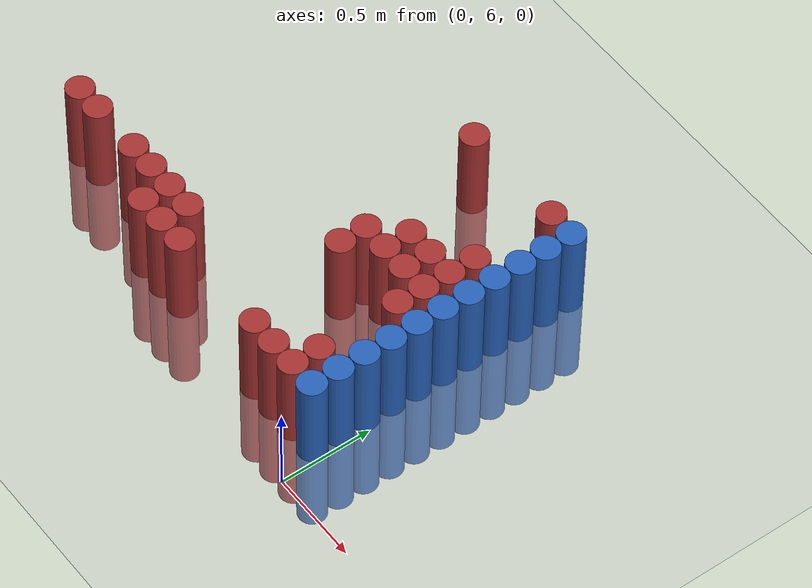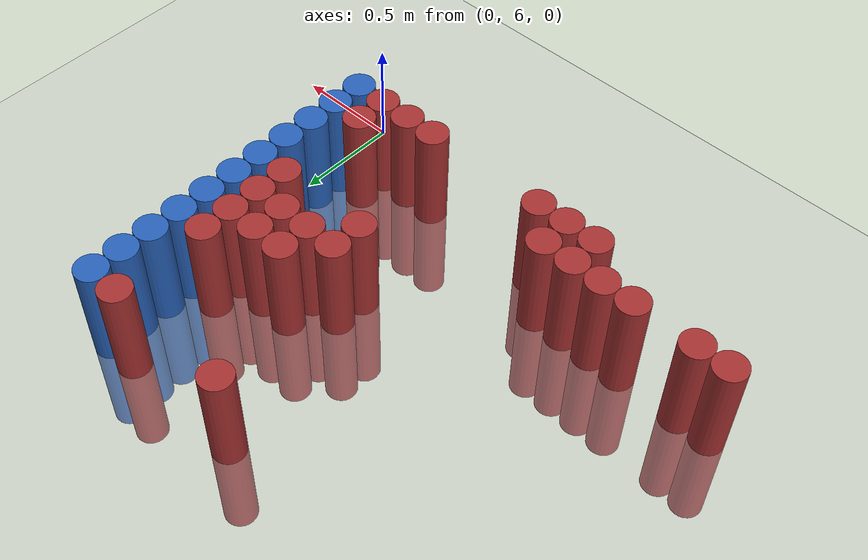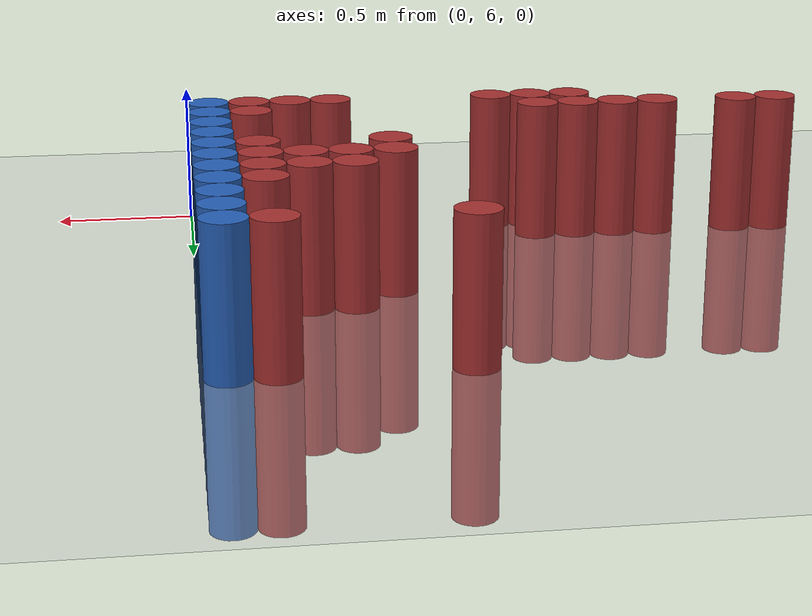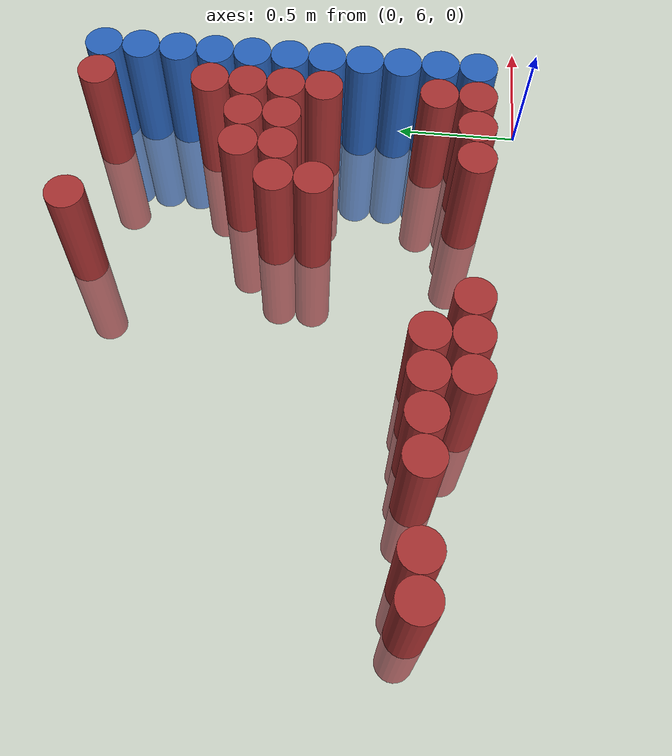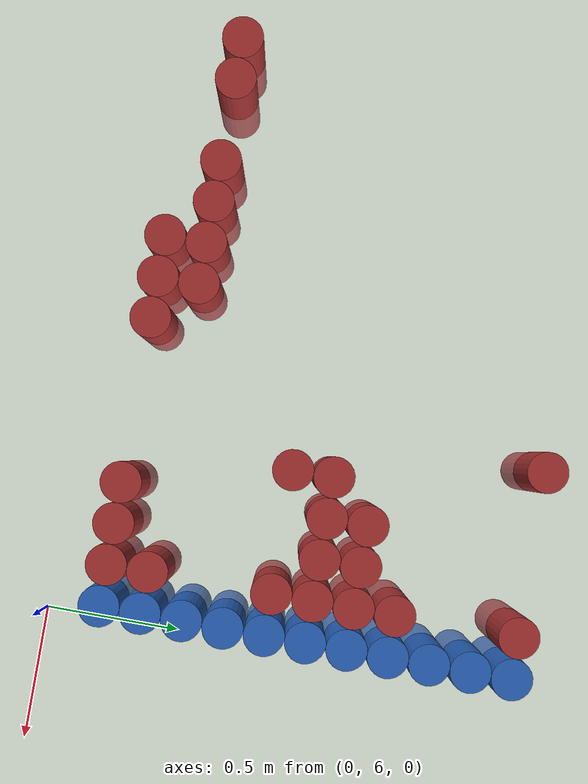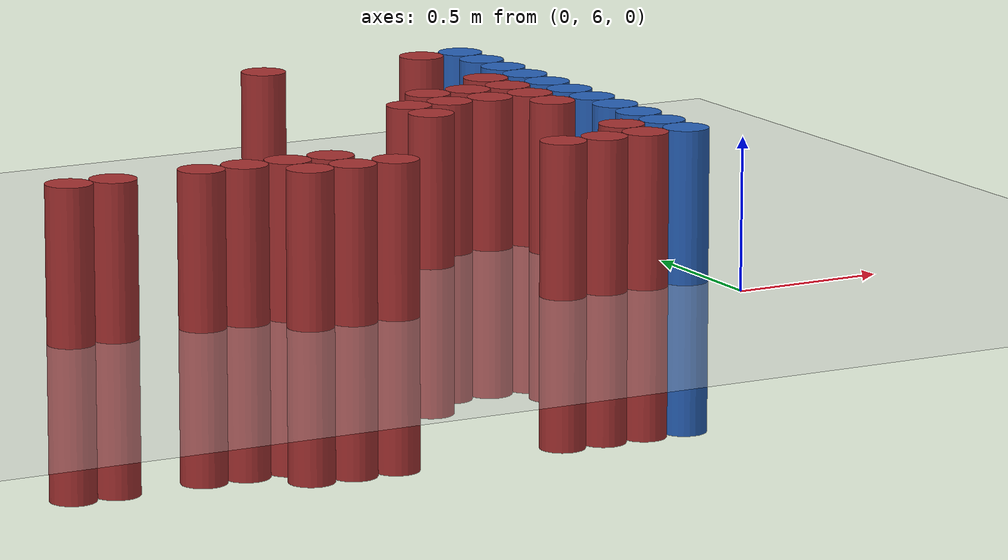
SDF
<sdf version="1.6">
 <world name="default">
  <model name="ground_plane">
   <static>1</static>
   <link name="link">
    <collision name="collision">
     <geometry><plane><normal>0 0 1</normal><size>100 100</size></plane></geometry>
     <surface><friction><ode><mu>100</mu><mu2>50</mu2></ode></friction></surface>
    </collision>
    <visual name="visual">
     <cast_shadows>0</cast_shadows>
     <geometry><plane><normal>0 0 1</normal><size>100 100</size></plane></geometry>
     <material>
      <script><uri>file://media/materials/scripts/gazebo.material</uri><name>Gazebo/Grey</name></script>
     </material>
    </visual>
   </link>
  </model>
  <model name="unit_cylinder_192">
   <static>1</static>
   <pose>-2.175000 6.375000 0.000000 0.000000 0.000000 0.000000</pose>
   <link name="link">
    <inertial>
     <mass>1</mass>
     <inertia><ixx>0.145833</ixx><ixy>0</ixy><ixz>0</ixz><iyy>0.145833</iyy><iyz>0</iyz><izz>0.125</izz></inertia>
    </inertial>
    <collision name="collision">
     <geometry><cylinder><radius>0.075000</radius><length>1</length></cylinder></geometry>
    </collision>
    <visual name="visual">
     <geometry><cylinder><radius>0.075000</radius><length>1</length></cylinder></geometry>
     <material>
      <ambient>0.648000 0.192000 0.192000 1</ambient>
      <diffuse>0.648000 0.192000 0.192000 1</diffuse>
     </material>
     <material>
      <script><name>Gazebo/Grey</name><uri>file://media/materials/scripts/gazebo.material</uri></script>
     </material>
    </visual>
    <sensor name="sensor_contact" type="contact"><contact><collision>collision</collision></contact></sensor>
   </link>
   <plugin filename="gz-sim-touchplugin-system" name="gz::sim::systems::TouchPlugin">
    <target>robot</target>
    <namespace>robot</namespace>
    <time>0.001</time>
    <enabled>true</enabled>
   </plugin>
  </model>
  <model name="unit_cylinder_197">
   <static>1</static>
   <pose>-2.025000 6.375000 0.000000 0.000000 0.000000 0.000000</pose>
   <link name="link">
    <inertial>
     <mass>1</mass>
     <inertia><ixx>0.145833</ixx><ixy>0</ixy><ixz>0</ixz><iyy>0.145833</iyy><iyz>0</iyz><izz>0.125</izz></inertia>
    </inertial>
    <collision name="collision">
     <geometry><cylinder><radius>0.075000</radius><length>1</length></cylinder></geometry>
    </collision>
    <visual name="visual">
     <geometry><cylinder><radius>0.075000</radius><length>1</length></cylinder></geometry>
     <material>
      <ambient>0.648000 0.192000 0.192000 1</ambient>
      <diffuse>0.648000 0.192000 0.192000 1</diffuse>
     </material>
     <material>
      <script><name>Gazebo/Grey</name><uri>file://media/materials/scripts/gazebo.material</uri></script>
     </material>
    </visual>
    <sensor name="sensor_contact" type="contact"><contact><collision>collision</collision></contact></sensor>
   </link>
   <plugin filename="gz-sim-touchplugin-system" name="gz::sim::systems::TouchPlugin">
    <target>robot</target>
    <namespace>robot</namespace>
    <time>0.001</time>
    <enabled>true</enabled>
   </plugin>
  </model>
  <model name="unit_cylinder_206">
   <static>1</static>
   <pose>-1.725000 6.375000 0.000000 0.000000 0.000000 0.000000</pose>
   <link name="link">
    <inertial>
     <mass>1</mass>
     <inertia><ixx>0.145833</ixx><ixy>0</ixy><ixz>0</ixz><iyy>0.145833</iyy><iyz>0</iyz><izz>0.125</izz></inertia>
    </inertial>
    <collision name="collision">
     <geometry><cylinder><radius>0.075000</radius><length>1</length></cylinder></geometry>
    </collision>
    <visual name="visual">
     <geometry><cylinder><radius>0.075000</radius><length>1</length></cylinder></geometry>
     <material>
      <ambient>0.648000 0.192000 0.192000 1</ambient>
      <diffuse>0.648000 0.192000 0.192000 1</diffuse>
     </material>
     <material>
      <script><name>Gazebo/Grey</name><uri>file://media/materials/scripts/gazebo.material</uri></script>
     </material>
    </visual>
    <sensor name="sensor_contact" type="contact"><contact><collision>collision</collision></contact></sensor>
   </link>
   <plugin filename="gz-sim-touchplugin-system" name="gz::sim::systems::TouchPlugin">
    <target>robot</target>
    <namespace>robot</namespace>
    <time>0.001</time>
    <enabled>true</enabled>
   </plugin>
  </model>
  <model name="unit_cylinder_208">
   <static>1</static>
   <pose>-1.575000 6.375000 0.000000 0.000000 0.000000 0.000000</pose>
   <link name="link">
    <inertial>
     <mass>1</mass>
     <inertia><ixx>0.145833</ixx><ixy>0</ixy><ixz>0</ixz><iyy>0.145833</iyy><iyz>0</iyz><izz>0.125</izz></inertia>
    </inertial>
    <collision name="collision">
     <geometry><cylinder><radius>0.075000</radius><length>1</length></cylinder></geometry>
    </collision>
    <visual name="visual">
     <geometry><cylinder><radius>0.075000</radius><length>1</length></cylinder></geometry>
     <material>
      <ambient>0.648000 0.192000 0.192000 1</ambient>
      <diffuse>0.648000 0.192000 0.192000 1</diffuse>
     </material>
     <material>
      <script><name>Gazebo/Grey</name><uri>file://media/materials/scripts/gazebo.material</uri></script>
     </material>
    </visual>
    <sensor name="sensor_contact" type="contact"><contact><collision>collision</collision></contact></sensor>
   </link>
   <plugin filename="gz-sim-touchplugin-system" name="gz::sim::systems::TouchPlugin">
    <target>robot</target>
    <namespace>robot</namespace>
    <time>0.001</time>
    <enabled>true</enabled>
   </plugin>
  </model>
  <model name="unit_cylinder_212">
   <static>1</static>
   <pose>-1.425000 6.225000 0.000000 0.000000 0.000000 0.000000</pose>
   <link name="link">
    <inertial>
     <mass>1</mass>
     <inertia><ixx>0.145833</ixx><ixy>0</ixy><ixz>0</ixz><iyy>0.145833</iyy><iyz>0</iyz><izz>0.125</izz></inertia>
    </inertial>
    <collision name="collision">
     <geometry><cylinder><radius>0.075000</radius><length>1</length></cylinder></geometry>
    </collision>
    <visual name="visual">
     <geometry><cylinder><radius>0.075000</radius><length>1</length></cylinder></geometry>
     <material>
      <ambient>0.648000 0.192000 0.192000 1</ambient>
      <diffuse>0.648000 0.192000 0.192000 1</diffuse>
     </material>
     <material>
      <script><name>Gazebo/Grey</name><uri>file://media/materials/scripts/gazebo.material</uri></script>
     </material>
    </visual>
    <sensor name="sensor_contact" type="contact"><contact><collision>collision</collision></contact></sensor>
   </link>
   <plugin filename="gz-sim-touchplugin-system" name="gz::sim::systems::TouchPlugin">
    <target>robot</target>
    <namespace>robot</namespace>
    <time>0.001</time>
    <enabled>true</enabled>
   </plugin>
  </model>
  <model name="unit_cylinder_213">
   <static>1</static>
   <pose>-1.425000 6.375000 0.000000 0.000000 0.000000 0.000000</pose>
   <link name="link">
    <inertial>
     <mass>1</mass>
     <inertia><ixx>0.145833</ixx><ixy>0</ixy><ixz>0</ixz><iyy>0.145833</iyy><iyz>0</iyz><izz>0.125</izz></inertia>
    </inertial>
    <collision name="collision">
     <geometry><cylinder><radius>0.075000</radius><length>1</length></cylinder></geometry>
    </collision>
    <visual name="visual">
     <geometry><cylinder><radius>0.075000</radius><length>1</length></cylinder></geometry>
     <material>
      <ambient>0.648000 0.192000 0.192000 1</ambient>
      <diffuse>0.648000 0.192000 0.192000 1</diffuse>
     </material>
     <material>
      <script><name>Gazebo/Grey</name><uri>file://media/materials/scripts/gazebo.material</uri></script>
     </material>
    </visual>
    <sensor name="sensor_contact" type="contact"><contact><collision>collision</collision></contact></sensor>
   </link>
   <plugin filename="gz-sim-touchplugin-system" name="gz::sim::systems::TouchPlugin">
    <target>robot</target>
    <namespace>robot</namespace>
    <time>0.001</time>
    <enabled>true</enabled>
   </plugin>
  </model>
  <model name="unit_cylinder_216">
   <static>1</static>
   <pose>-1.275000 6.225000 0.000000 0.000000 0.000000 0.000000</pose>
   <link name="link">
    <inertial>
     <mass>1</mass>
     <inertia><ixx>0.145833</ixx><ixy>0</ixy><ixz>0</ixz><iyy>0.145833</iyy><iyz>0</iyz><izz>0.125</izz></inertia>
    </inertial>
    <collision name="collision">
     <geometry><cylinder><radius>0.075000</radius><length>1</length></cylinder></geometry>
    </collision>
    <visual name="visual">
     <geometry><cylinder><radius>0.075000</radius><length>1</length></cylinder></geometry>
     <material>
      <ambient>0.648000 0.192000 0.192000 1</ambient>
      <diffuse>0.648000 0.192000 0.192000 1</diffuse>
     </material>
     <material>
      <script><name>Gazebo/Grey</name><uri>file://media/materials/scripts/gazebo.material</uri></script>
     </material>
    </visual>
    <sensor name="sensor_contact" type="contact"><contact><collision>collision</collision></contact></sensor>
   </link>
   <plugin filename="gz-sim-touchplugin-system" name="gz::sim::systems::TouchPlugin">
    <target>robot</target>
    <namespace>robot</namespace>
    <time>0.001</time>
    <enabled>true</enabled>
   </plugin>
  </model>
  <model name="unit_cylinder_217">
   <static>1</static>
   <pose>-1.275000 6.375000 0.000000 0.000000 0.000000 0.000000</pose>
   <link name="link">
    <inertial>
     <mass>1</mass>
     <inertia><ixx>0.145833</ixx><ixy>0</ixy><ixz>0</ixz><iyy>0.145833</iyy><iyz>0</iyz><izz>0.125</izz></inertia>
    </inertial>
    <collision name="collision">
     <geometry><cylinder><radius>0.075000</radius><length>1</length></cylinder></geometry>
    </collision>
    <visual name="visual">
     <geometry><cylinder><radius>0.075000</radius><length>1</length></cylinder></geometry>
     <material>
      <ambient>0.648000 0.192000 0.192000 1</ambient>
      <diffuse>0.648000 0.192000 0.192000 1</diffuse>
     </material>
     <material>
      <script><name>Gazebo/Grey</name><uri>file://media/materials/scripts/gazebo.material</uri></script>
     </material>
    </visual>
    <sensor name="sensor_contact" type="contact"><contact><collision>collision</collision></contact></sensor>
   </link>
   <plugin filename="gz-sim-touchplugin-system" name="gz::sim::systems::TouchPlugin">
    <target>robot</target>
    <namespace>robot</namespace>
    <time>0.001</time>
    <enabled>true</enabled>
   </plugin>
  </model>
  <model name="unit_cylinder_220">
   <static>1</static>
   <pose>-1.125000 6.225000 0.000000 0.000000 0.000000 0.000000</pose>
   <link name="link">
    <inertial>
     <mass>1</mass>
     <inertia><ixx>0.145833</ixx><ixy>0</ixy><ixz>0</ixz><iyy>0.145833</iyy><iyz>0</iyz><izz>0.125</izz></inertia>
    </inertial>
    <collision name="collision">
     <geometry><cylinder><radius>0.075000</radius><length>1</length></cylinder></geometry>
    </collision>
    <visual name="visual">
     <geometry><cylinder><radius>0.075000</radius><length>1</length></cylinder></geometry>
     <material>
      <ambient>0.648000 0.192000 0.192000 1</ambient>
      <diffuse>0.648000 0.192000 0.192000 1</diffuse>
     </material>
     <material>
      <script><name>Gazebo/Grey</name><uri>file://media/materials/scripts/gazebo.material</uri></script>
     </material>
    </visual>
    <sensor name="sensor_contact" type="contact"><contact><collision>collision</collision></contact></sensor>
   </link>
   <plugin filename="gz-sim-touchplugin-system" name="gz::sim::systems::TouchPlugin">
    <target>robot</target>
    <namespace>robot</namespace>
    <time>0.001</time>
    <enabled>true</enabled>
   </plugin>
  </model>
  <model name="unit_cylinder_225">
   <static>1</static>
   <pose>-0.825000 7.725000 0.000000 0.000000 0.000000 0.000000</pose>
   <link name="link">
    <inertial>
     <mass>1</mass>
     <inertia><ixx>0.145833</ixx><ixy>0</ixy><ixz>0</ixz><iyy>0.145833</iyy><iyz>0</iyz><izz>0.125</izz></inertia>
    </inertial>
    <collision name="collision">
     <geometry><cylinder><radius>0.075000</radius><length>1</length></cylinder></geometry>
    </collision>
    <visual name="visual">
     <geometry><cylinder><radius>0.075000</radius><length>1</length></cylinder></geometry>
     <material>
      <ambient>0.648000 0.192000 0.192000 1</ambient>
      <diffuse>0.648000 0.192000 0.192000 1</diffuse>
     </material>
     <material>
      <script><name>Gazebo/Grey</name><uri>file://media/materials/scripts/gazebo.material</uri></script>
     </material>
    </visual>
    <sensor name="sensor_contact" type="contact"><contact><collision>collision</collision></contact></sensor>
   </link>
   <plugin filename="gz-sim-touchplugin-system" name="gz::sim::systems::TouchPlugin">
    <target>robot</target>
    <namespace>robot</namespace>
    <time>0.001</time>
    <enabled>true</enabled>
   </plugin>
  </model>
  <model name="unit_cylinder_229">
   <static>1</static>
   <pose>-0.675000 6.825000 0.000000 0.000000 0.000000 0.000000</pose>
   <link name="link">
    <inertial>
     <mass>1</mass>
     <inertia><ixx>0.145833</ixx><ixy>0</ixy><ixz>0</ixz><iyy>0.145833</iyy><iyz>0</iyz><izz>0.125</izz></inertia>
    </inertial>
    <collision name="collision">
     <geometry><cylinder><radius>0.075000</radius><length>1</length></cylinder></geometry>
    </collision>
    <visual name="visual">
     <geometry><cylinder><radius>0.075000</radius><length>1</length></cylinder></geometry>
     <material>
      <ambient>0.648000 0.192000 0.192000 1</ambient>
      <diffuse>0.648000 0.192000 0.192000 1</diffuse>
     </material>
     <material>
      <script><name>Gazebo/Grey</name><uri>file://media/materials/scripts/gazebo.material</uri></script>
     </material>
    </visual>
    <sensor name="sensor_contact" type="contact"><contact><collision>collision</collision></contact></sensor>
   </link>
   <plugin filename="gz-sim-touchplugin-system" name="gz::sim::systems::TouchPlugin">
    <target>robot</target>
    <namespace>robot</namespace>
    <time>0.001</time>
    <enabled>true</enabled>
   </plugin>
  </model>
  <model name="unit_cylinder_230">
   <static>1</static>
   <pose>-0.675000 6.975000 0.000000 0.000000 0.000000 0.000000</pose>
   <link name="link">
    <inertial>
     <mass>1</mass>
     <inertia><ixx>0.145833</ixx><ixy>0</ixy><ixz>0</ixz><iyy>0.145833</iyy><iyz>0</iyz><izz>0.125</izz></inertia>
    </inertial>
    <collision name="collision">
     <geometry><cylinder><radius>0.075000</radius><length>1</length></cylinder></geometry>
    </collision>
    <visual name="visual">
     <geometry><cylinder><radius>0.075000</radius><length>1</length></cylinder></geometry>
     <material>
      <ambient>0.648000 0.192000 0.192000 1</ambient>
      <diffuse>0.648000 0.192000 0.192000 1</diffuse>
     </material>
     <material>
      <script><name>Gazebo/Grey</name><uri>file://media/materials/scripts/gazebo.material</uri></script>
     </material>
    </visual>
    <sensor name="sensor_contact" type="contact"><contact><collision>collision</collision></contact></sensor>
   </link>
   <plugin filename="gz-sim-touchplugin-system" name="gz::sim::systems::TouchPlugin">
    <target>robot</target>
    <namespace>robot</namespace>
    <time>0.001</time>
    <enabled>true</enabled>
   </plugin>
  </model>
  <model name="unit_cylinder_233">
   <static>1</static>
   <pose>-0.525000 6.225000 0.000000 0.000000 0.000000 0.000000</pose>
   <link name="link">
    <inertial>
     <mass>1</mass>
     <inertia><ixx>0.145833</ixx><ixy>0</ixy><ixz>0</ixz><iyy>0.145833</iyy><iyz>0</iyz><izz>0.125</izz></inertia>
    </inertial>
    <collision name="collision">
     <geometry><cylinder><radius>0.075000</radius><length>1</length></cylinder></geometry>
    </collision>
    <visual name="visual">
     <geometry><cylinder><radius>0.075000</radius><length>1</length></cylinder></geometry>
     <material>
      <ambient>0.648000 0.192000 0.192000 1</ambient>
      <diffuse>0.648000 0.192000 0.192000 1</diffuse>
     </material>
     <material>
      <script><name>Gazebo/Grey</name><uri>file://media/materials/scripts/gazebo.material</uri></script>
     </material>
    </visual>
    <sensor name="sensor_contact" type="contact"><contact><collision>collision</collision></contact></sensor>
   </link>
   <plugin filename="gz-sim-touchplugin-system" name="gz::sim::systems::TouchPlugin">
    <target>robot</target>
    <namespace>robot</namespace>
    <time>0.001</time>
    <enabled>true</enabled>
   </plugin>
  </model>
  <model name="unit_cylinder_234">
   <static>1</static>
   <pose>-0.525000 6.975000 0.000000 0.000000 0.000000 0.000000</pose>
   <link name="link">
    <inertial>
     <mass>1</mass>
     <inertia><ixx>0.145833</ixx><ixy>0</ixy><ixz>0</ixz><iyy>0.145833</iyy><iyz>0</iyz><izz>0.125</izz></inertia>
    </inertial>
    <collision name="collision">
     <geometry><cylinder><radius>0.075000</radius><length>1</length></cylinder></geometry>
    </collision>
    <visual name="visual">
     <geometry><cylinder><radius>0.075000</radius><length>1</length></cylinder></geometry>
     <material>
      <ambient>0.648000 0.192000 0.192000 1</ambient>
      <diffuse>0.648000 0.192000 0.192000 1</diffuse>
     </material>
     <material>
      <script><name>Gazebo/Grey</name><uri>file://media/materials/scripts/gazebo.material</uri></script>
     </material>
    </visual>
    <sensor name="sensor_contact" type="contact"><contact><collision>collision</collision></contact></sensor>
   </link>
   <plugin filename="gz-sim-touchplugin-system" name="gz::sim::systems::TouchPlugin">
    <target>robot</target>
    <namespace>robot</namespace>
    <time>0.001</time>
    <enabled>true</enabled>
   </plugin>
  </model>
  <model name="unit_cylinder_235">
   <static>1</static>
   <pose>-0.525000 7.125000 0.000000 0.000000 0.000000 0.000000</pose>
   <link name="link">
    <inertial>
     <mass>1</mass>
     <inertia><ixx>0.145833</ixx><ixy>0</ixy><ixz>0</ixz><iyy>0.145833</iyy><iyz>0</iyz><izz>0.125</izz></inertia>
    </inertial>
    <collision name="collision">
     <geometry><cylinder><radius>0.075000</radius><length>1</length></cylinder></geometry>
    </collision>
    <visual name="visual">
     <geometry><cylinder><radius>0.075000</radius><length>1</length></cylinder></geometry>
     <material>
      <ambient>0.648000 0.192000 0.192000 1</ambient>
      <diffuse>0.648000 0.192000 0.192000 1</diffuse>
     </material>
     <material>
      <script><name>Gazebo/Grey</name><uri>file://media/materials/scripts/gazebo.material</uri></script>
     </material>
    </visual>
    <sensor name="sensor_contact" type="contact"><contact><collision>collision</collision></contact></sensor>
   </link>
   <plugin filename="gz-sim-touchplugin-system" name="gz::sim::systems::TouchPlugin">
    <target>robot</target>
    <namespace>robot</namespace>
    <time>0.001</time>
    <enabled>true</enabled>
   </plugin>
  </model>
  <model name="unit_cylinder_239">
   <static>1</static>
   <pose>-0.375000 6.225000 0.000000 0.000000 0.000000 0.000000</pose>
   <link name="link">
    <inertial>
     <mass>1</mass>
     <inertia><ixx>0.145833</ixx><ixy>0</ixy><ixz>0</ixz><iyy>0.145833</iyy><iyz>0</iyz><izz>0.125</izz></inertia>
    </inertial>
    <collision name="collision">
     <geometry><cylinder><radius>0.075000</radius><length>1</length></cylinder></geometry>
    </collision>
    <visual name="visual">
     <geometry><cylinder><radius>0.075000</radius><length>1</length></cylinder></geometry>
     <material>
      <ambient>0.648000 0.192000 0.192000 1</ambient>
      <diffuse>0.648000 0.192000 0.192000 1</diffuse>
     </material>
     <material>
      <script><name>Gazebo/Grey</name><uri>file://media/materials/scripts/gazebo.material</uri></script>
     </material>
    </visual>
    <sensor name="sensor_contact" type="contact"><contact><collision>collision</collision></contact></sensor>
   </link>
   <plugin filename="gz-sim-touchplugin-system" name="gz::sim::systems::TouchPlugin">
    <target>robot</target>
    <namespace>robot</namespace>
    <time>0.001</time>
    <enabled>true</enabled>
   </plugin>
  </model>
  <model name="unit_cylinder_240">
   <static>1</static>
   <pose>-0.375000 6.975000 0.000000 0.000000 0.000000 0.000000</pose>
   <link name="link">
    <inertial>
     <mass>1</mass>
     <inertia><ixx>0.145833</ixx><ixy>0</ixy><ixz>0</ixz><iyy>0.145833</iyy><iyz>0</iyz><izz>0.125</izz></inertia>
    </inertial>
    <collision name="collision">
     <geometry><cylinder><radius>0.075000</radius><length>1</length></cylinder></geometry>
    </collision>
    <visual name="visual">
     <geometry><cylinder><radius>0.075000</radius><length>1</length></cylinder></geometry>
     <material>
      <ambient>0.648000 0.192000 0.192000 1</ambient>
      <diffuse>0.648000 0.192000 0.192000 1</diffuse>
     </material>
     <material>
      <script><name>Gazebo/Grey</name><uri>file://media/materials/scripts/gazebo.material</uri></script>
     </material>
    </visual>
    <sensor name="sensor_contact" type="contact"><contact><collision>collision</collision></contact></sensor>
   </link>
   <plugin filename="gz-sim-touchplugin-system" name="gz::sim::systems::TouchPlugin">
    <target>robot</target>
    <namespace>robot</namespace>
    <time>0.001</time>
    <enabled>true</enabled>
   </plugin>
  </model>
  <model name="unit_cylinder_241">
   <static>1</static>
   <pose>-0.375000 7.125000 0.000000 0.000000 0.000000 0.000000</pose>
   <link name="link">
    <inertial>
     <mass>1</mass>
     <inertia><ixx>0.145833</ixx><ixy>0</ixy><ixz>0</ixz><iyy>0.145833</iyy><iyz>0</iyz><izz>0.125</izz></inertia>
    </inertial>
    <collision name="collision">
     <geometry><cylinder><radius>0.075000</radius><length>1</length></cylinder></geometry>
    </collision>
    <visual name="visual">
     <geometry><cylinder><radius>0.075000</radius><length>1</length></cylinder></geometry>
     <material>
      <ambient>0.648000 0.192000 0.192000 1</ambient>
      <diffuse>0.648000 0.192000 0.192000 1</diffuse>
     </material>
     <material>
      <script><name>Gazebo/Grey</name><uri>file://media/materials/scripts/gazebo.material</uri></script>
     </material>
    </visual>
    <sensor name="sensor_contact" type="contact"><contact><collision>collision</collision></contact></sensor>
   </link>
   <plugin filename="gz-sim-touchplugin-system" name="gz::sim::systems::TouchPlugin">
    <target>robot</target>
    <namespace>robot</namespace>
    <time>0.001</time>
    <enabled>true</enabled>
   </plugin>
  </model>
  <model name="unit_cylinder_248">
   <static>1</static>
   <pose>-0.225000 6.225000 0.000000 0.000000 0.000000 0.000000</pose>
   <link name="link">
    <inertial>
     <mass>1</mass>
     <inertia><ixx>0.145833</ixx><ixy>0</ixy><ixz>0</ixz><iyy>0.145833</iyy><iyz>0</iyz><izz>0.125</izz></inertia>
    </inertial>
    <collision name="collision">
     <geometry><cylinder><radius>0.075000</radius><length>1</length></cylinder></geometry>
    </collision>
    <visual name="visual">
     <geometry><cylinder><radius>0.075000</radius><length>1</length></cylinder></geometry>
     <material>
      <ambient>0.648000 0.192000 0.192000 1</ambient>
      <diffuse>0.648000 0.192000 0.192000 1</diffuse>
     </material>
     <material>
      <script><name>Gazebo/Grey</name><uri>file://media/materials/scripts/gazebo.material</uri></script>
     </material>
    </visual>
    <sensor name="sensor_contact" type="contact"><contact><collision>collision</collision></contact></sensor>
   </link>
   <plugin filename="gz-sim-touchplugin-system" name="gz::sim::systems::TouchPlugin">
    <target>robot</target>
    <namespace>robot</namespace>
    <time>0.001</time>
    <enabled>true</enabled>
   </plugin>
  </model>
  <model name="unit_cylinder_249">
   <static>1</static>
   <pose>-0.225000 6.375000 0.000000 0.000000 0.000000 0.000000</pose>
   <link name="link">
    <inertial>
     <mass>1</mass>
     <inertia><ixx>0.145833</ixx><ixy>0</ixy><ixz>0</ixz><iyy>0.145833</iyy><iyz>0</iyz><izz>0.125</izz></inertia>
    </inertial>
    <collision name="collision">
     <geometry><cylinder><radius>0.075000</radius><length>1</length></cylinder></geometry>
    </collision>
    <visual name="visual">
     <geometry><cylinder><radius>0.075000</radius><length>1</length></cylinder></geometry>
     <material>
      <ambient>0.648000 0.192000 0.192000 1</ambient>
      <diffuse>0.648000 0.192000 0.192000 1</diffuse>
     </material>
     <material>
      <script><name>Gazebo/Grey</name><uri>file://media/materials/scripts/gazebo.material</uri></script>
     </material>
    </visual>
    <sensor name="sensor_contact" type="contact"><contact><collision>collision</collision></contact></sensor>
   </link>
   <plugin filename="gz-sim-touchplugin-system" name="gz::sim::systems::TouchPlugin">
    <target>robot</target>
    <namespace>robot</namespace>
    <time>0.001</time>
    <enabled>true</enabled>
   </plugin>
  </model>
  <model name="unit_cylinder_250">
   <static>1</static>
   <pose>-0.225000 6.825000 0.000000 0.000000 0.000000 0.000000</pose>
   <link name="link">
    <inertial>
     <mass>1</mass>
     <inertia><ixx>0.145833</ixx><ixy>0</ixy><ixz>0</ixz><iyy>0.145833</iyy><iyz>0</iyz><izz>0.125</izz></inertia>
    </inertial>
    <collision name="collision">
     <geometry><cylinder><radius>0.075000</radius><length>1</length></cylinder></geometry>
    </collision>
    <visual name="visual">
     <geometry><cylinder><radius>0.075000</radius><length>1</length></cylinder></geometry>
     <material>
      <ambient>0.648000 0.192000 0.192000 1</ambient>
      <diffuse>0.648000 0.192000 0.192000 1</diffuse>
     </material>
     <material>
      <script><name>Gazebo/Grey</name><uri>file://media/materials/scripts/gazebo.material</uri></script>
     </material>
    </visual>
    <sensor name="sensor_contact" type="contact"><contact><collision>collision</collision></contact></sensor>
   </link>
   <plugin filename="gz-sim-touchplugin-system" name="gz::sim::systems::TouchPlugin">
    <target>robot</target>
    <namespace>robot</namespace>
    <time>0.001</time>
    <enabled>true</enabled>
   </plugin>
  </model>
  <model name="unit_cylinder_251">
   <static>1</static>
   <pose>-0.225000 6.975000 0.000000 0.000000 0.000000 0.000000</pose>
   <link name="link">
    <inertial>
     <mass>1</mass>
     <inertia><ixx>0.145833</ixx><ixy>0</ixy><ixz>0</ixz><iyy>0.145833</iyy><iyz>0</iyz><izz>0.125</izz></inertia>
    </inertial>
    <collision name="collision">
     <geometry><cylinder><radius>0.075000</radius><length>1</length></cylinder></geometry>
    </collision>
    <visual name="visual">
     <geometry><cylinder><radius>0.075000</radius><length>1</length></cylinder></geometry>
     <material>
      <ambient>0.648000 0.192000 0.192000 1</ambient>
      <diffuse>0.648000 0.192000 0.192000 1</diffuse>
     </material>
     <material>
      <script><name>Gazebo/Grey</name><uri>file://media/materials/scripts/gazebo.material</uri></script>
     </material>
    </visual>
    <sensor name="sensor_contact" type="contact"><contact><collision>collision</collision></contact></sensor>
   </link>
   <plugin filename="gz-sim-touchplugin-system" name="gz::sim::systems::TouchPlugin">
    <target>robot</target>
    <namespace>robot</namespace>
    <time>0.001</time>
    <enabled>true</enabled>
   </plugin>
  </model>
  <model name="unit_cylinder_252">
   <static>1</static>
   <pose>-0.225000 7.125000 0.000000 0.000000 0.000000 0.000000</pose>
   <link name="link">
    <inertial>
     <mass>1</mass>
     <inertia><ixx>0.145833</ixx><ixy>0</ixy><ixz>0</ixz><iyy>0.145833</iyy><iyz>0</iyz><izz>0.125</izz></inertia>
    </inertial>
    <collision name="collision">
     <geometry><cylinder><radius>0.075000</radius><length>1</length></cylinder></geometry>
    </collision>
    <visual name="visual">
     <geometry><cylinder><radius>0.075000</radius><length>1</length></cylinder></geometry>
     <material>
      <ambient>0.648000 0.192000 0.192000 1</ambient>
      <diffuse>0.648000 0.192000 0.192000 1</diffuse>
     </material>
     <material>
      <script><name>Gazebo/Grey</name><uri>file://media/materials/scripts/gazebo.material</uri></script>
     </material>
    </visual>
    <sensor name="sensor_contact" type="contact"><contact><collision>collision</collision></contact></sensor>
   </link>
   <plugin filename="gz-sim-touchplugin-system" name="gz::sim::systems::TouchPlugin">
    <target>robot</target>
    <namespace>robot</namespace>
    <time>0.001</time>
    <enabled>true</enabled>
   </plugin>
  </model>
  <model name="unit_cylinder_253">
   <static>1</static>
   <pose>-0.225000 7.275000 0.000000 0.000000 0.000000 0.000000</pose>
   <link name="link">
    <inertial>
     <mass>1</mass>
     <inertia><ixx>0.145833</ixx><ixy>0</ixy><ixz>0</ixz><iyy>0.145833</iyy><iyz>0</iyz><izz>0.125</izz></inertia>
    </inertial>
    <collision name="collision">
     <geometry><cylinder><radius>0.075000</radius><length>1</length></cylinder></geometry>
    </collision>
    <visual name="visual">
     <geometry><cylinder><radius>0.075000</radius><length>1</length></cylinder></geometry>
     <material>
      <ambient>0.648000 0.192000 0.192000 1</ambient>
      <diffuse>0.648000 0.192000 0.192000 1</diffuse>
     </material>
     <material>
      <script><name>Gazebo/Grey</name><uri>file://media/materials/scripts/gazebo.material</uri></script>
     </material>
    </visual>
    <sensor name="sensor_contact" type="contact"><contact><collision>collision</collision></contact></sensor>
   </link>
   <plugin filename="gz-sim-touchplugin-system" name="gz::sim::systems::TouchPlugin">
    <target>robot</target>
    <namespace>robot</namespace>
    <time>0.001</time>
    <enabled>true</enabled>
   </plugin>
  </model>
  <model name="unit_cylinder_254">
   <static>1</static>
   <pose>-0.225000 7.725000 0.000000 0.000000 0.000000 0.000000</pose>
   <link name="link">
    <inertial>
     <mass>1</mass>
     <inertia><ixx>0.145833</ixx><ixy>0</ixy><ixz>0</ixz><iyy>0.145833</iyy><iyz>0</iyz><izz>0.125</izz></inertia>
    </inertial>
    <collision name="collision">
     <geometry><cylinder><radius>0.075000</radius><length>1</length></cylinder></geometry>
    </collision>
    <visual name="visual">
     <geometry><cylinder><radius>0.075000</radius><length>1</length></cylinder></geometry>
     <material>
      <ambient>0.648000 0.192000 0.192000 1</ambient>
      <diffuse>0.648000 0.192000 0.192000 1</diffuse>
     </material>
     <material>
      <script><name>Gazebo/Grey</name><uri>file://media/materials/scripts/gazebo.material</uri></script>
     </material>
    </visual>
    <sensor name="sensor_contact" type="contact"><contact><collision>collision</collision></contact></sensor>
   </link>
   <plugin filename="gz-sim-touchplugin-system" name="gz::sim::systems::TouchPlugin">
    <target>robot</target>
    <namespace>robot</namespace>
    <time>0.001</time>
    <enabled>true</enabled>
   </plugin>
  </model>
  <model name="unit_cylinder_269">
   <static>1</static>
   <pose>-0.075000 6.225000 0.000000 0.000000 0.000000 0.000000</pose>
   <link name="link">
    <inertial>
     <mass>1</mass>
     <inertia><ixx>0.145833</ixx><ixy>0</ixy><ixz>0</ixz><iyy>0.145833</iyy><iyz>0</iyz><izz>0.125</izz></inertia>
    </inertial>
    <collision name="collision">
     <geometry><cylinder><radius>0.075000</radius><length>1</length></cylinder></geometry>
    </collision>
    <visual name="visual">
     <geometry><cylinder><radius>0.075000</radius><length>1</length></cylinder></geometry>
     <material>
      <ambient>0.152000 0.379000 0.720000 1</ambient>
      <diffuse>0.152000 0.379000 0.720000 1</diffuse>
     </material>
     <material>
      <script><name>Gazebo/Grey</name><uri>file://media/materials/scripts/gazebo.material</uri></script>
     </material>
    </visual>
    <sensor name="sensor_contact" type="contact"><contact><collision>collision</collision></contact></sensor>
   </link>
   <plugin filename="gz-sim-touchplugin-system" name="gz::sim::systems::TouchPlugin">
    <target>robot</target>
    <namespace>robot</namespace>
    <time>0.001</time>
    <enabled>true</enabled>
   </plugin>
  </model>
  <model name="unit_cylinder_270">
   <static>1</static>
   <pose>-0.075000 6.375000 0.000000 0.000000 0.000000 0.000000</pose>
   <link name="link">
    <inertial>
     <mass>1</mass>
     <inertia><ixx>0.145833</ixx><ixy>0</ixy><ixz>0</ixz><iyy>0.145833</iyy><iyz>0</iyz><izz>0.125</izz></inertia>
    </inertial>
    <collision name="collision">
     <geometry><cylinder><radius>0.075000</radius><length>1</length></cylinder></geometry>
    </collision>
    <visual name="visual">
     <geometry><cylinder><radius>0.075000</radius><length>1</length></cylinder></geometry>
     <material>
      <ambient>0.152000 0.379000 0.720000 1</ambient>
      <diffuse>0.152000 0.379000 0.720000 1</diffuse>
     </material>
     <material>
      <script><name>Gazebo/Grey</name><uri>file://media/materials/scripts/gazebo.material</uri></script>
     </material>
    </visual>
    <sensor name="sensor_contact" type="contact"><contact><collision>collision</collision></contact></sensor>
   </link>
   <plugin filename="gz-sim-touchplugin-system" name="gz::sim::systems::TouchPlugin">
    <target>robot</target>
    <namespace>robot</namespace>
    <time>0.001</time>
    <enabled>true</enabled>
   </plugin>
  </model>
  <model name="unit_cylinder_271">
   <static>1</static>
   <pose>-0.075000 6.525000 0.000000 0.000000 0.000000 0.000000</pose>
   <link name="link">
    <inertial>
     <mass>1</mass>
     <inertia><ixx>0.145833</ixx><ixy>0</ixy><ixz>0</ixz><iyy>0.145833</iyy><iyz>0</iyz><izz>0.125</izz></inertia>
    </inertial>
    <collision name="collision">
     <geometry><cylinder><radius>0.075000</radius><length>1</length></cylinder></geometry>
    </collision>
    <visual name="visual">
     <geometry><cylinder><radius>0.075000</radius><length>1</length></cylinder></geometry>
     <material>
      <ambient>0.152000 0.379000 0.720000 1</ambient>
      <diffuse>0.152000 0.379000 0.720000 1</diffuse>
     </material>
     <material>
      <script><name>Gazebo/Grey</name><uri>file://media/materials/scripts/gazebo.material</uri></script>
     </material>
    </visual>
    <sensor name="sensor_contact" type="contact"><contact><collision>collision</collision></contact></sensor>
   </link>
   <plugin filename="gz-sim-touchplugin-system" name="gz::sim::systems::TouchPlugin">
    <target>robot</target>
    <namespace>robot</namespace>
    <time>0.001</time>
    <enabled>true</enabled>
   </plugin>
  </model>
  <model name="unit_cylinder_272">
   <static>1</static>
   <pose>-0.075000 6.675000 0.000000 0.000000 0.000000 0.000000</pose>
   <link name="link">
    <inertial>
     <mass>1</mass>
     <inertia><ixx>0.145833</ixx><ixy>0</ixy><ixz>0</ixz><iyy>0.145833</iyy><iyz>0</iyz><izz>0.125</izz></inertia>
    </inertial>
    <collision name="collision">
     <geometry><cylinder><radius>0.075000</radius><length>1</length></cylinder></geometry>
    </collision>
    <visual name="visual">
     <geometry><cylinder><radius>0.075000</radius><length>1</length></cylinder></geometry>
     <material>
      <ambient>0.152000 0.379000 0.720000 1</ambient>
      <diffuse>0.152000 0.379000 0.720000 1</diffuse>
     </material>
     <material>
      <script><name>Gazebo/Grey</name><uri>file://media/materials/scripts/gazebo.material</uri></script>
     </material>
    </visual>
    <sensor name="sensor_contact" type="contact"><contact><collision>collision</collision></contact></sensor>
   </link>
   <plugin filename="gz-sim-touchplugin-system" name="gz::sim::systems::TouchPlugin">
    <target>robot</target>
    <namespace>robot</namespace>
    <time>0.001</time>
    <enabled>true</enabled>
   </plugin>
  </model>
  <model name="unit_cylinder_273">
   <static>1</static>
   <pose>-0.075000 6.825000 0.000000 0.000000 0.000000 0.000000</pose>
   <link name="link">
    <inertial>
     <mass>1</mass>
     <inertia><ixx>0.145833</ixx><ixy>0</ixy><ixz>0</ixz><iyy>0.145833</iyy><iyz>0</iyz><izz>0.125</izz></inertia>
    </inertial>
    <collision name="collision">
     <geometry><cylinder><radius>0.075000</radius><length>1</length></cylinder></geometry>
    </collision>
    <visual name="visual">
     <geometry><cylinder><radius>0.075000</radius><length>1</length></cylinder></geometry>
     <material>
      <ambient>0.152000 0.379000 0.720000 1</ambient>
      <diffuse>0.152000 0.379000 0.720000 1</diffuse>
     </material>
     <material>
      <script><name>Gazebo/Grey</name><uri>file://media/materials/scripts/gazebo.material</uri></script>
     </material>
    </visual>
    <sensor name="sensor_contact" type="contact"><contact><collision>collision</collision></contact></sensor>
   </link>
   <plugin filename="gz-sim-touchplugin-system" name="gz::sim::systems::TouchPlugin">
    <target>robot</target>
    <namespace>robot</namespace>
    <time>0.001</time>
    <enabled>true</enabled>
   </plugin>
  </model>
  <model name="unit_cylinder_274">
   <static>1</static>
   <pose>-0.075000 6.975000 0.000000 0.000000 0.000000 0.000000</pose>
   <link name="link">
    <inertial>
     <mass>1</mass>
     <inertia><ixx>0.145833</ixx><ixy>0</ixy><ixz>0</ixz><iyy>0.145833</iyy><iyz>0</iyz><izz>0.125</izz></inertia>
    </inertial>
    <collision name="collision">
     <geometry><cylinder><radius>0.075000</radius><length>1</length></cylinder></geometry>
    </collision>
    <visual name="visual">
     <geometry><cylinder><radius>0.075000</radius><length>1</length></cylinder></geometry>
     <material>
      <ambient>0.152000 0.379000 0.720000 1</ambient>
      <diffuse>0.152000 0.379000 0.720000 1</diffuse>
     </material>
     <material>
      <script><name>Gazebo/Grey</name><uri>file://media/materials/scripts/gazebo.material</uri></script>
     </material>
    </visual>
    <sensor name="sensor_contact" type="contact"><contact><collision>collision</collision></contact></sensor>
   </link>
   <plugin filename="gz-sim-touchplugin-system" name="gz::sim::systems::TouchPlugin">
    <target>robot</target>
    <namespace>robot</namespace>
    <time>0.001</time>
    <enabled>true</enabled>
   </plugin>
  </model>
  <model name="unit_cylinder_275">
   <static>1</static>
   <pose>-0.075000 7.125000 0.000000 0.000000 0.000000 0.000000</pose>
   <link name="link">
    <inertial>
     <mass>1</mass>
     <inertia><ixx>0.145833</ixx><ixy>0</ixy><ixz>0</ixz><iyy>0.145833</iyy><iyz>0</iyz><izz>0.125</izz></inertia>
    </inertial>
    <collision name="collision">
     <geometry><cylinder><radius>0.075000</radius><length>1</length></cylinder></geometry>
    </collision>
    <visual name="visual">
     <geometry><cylinder><radius>0.075000</radius><length>1</length></cylinder></geometry>
     <material>
      <ambient>0.152000 0.379000 0.720000 1</ambient>
      <diffuse>0.152000 0.379000 0.720000 1</diffuse>
     </material>
     <material>
      <script><name>Gazebo/Grey</name><uri>file://media/materials/scripts/gazebo.material</uri></script>
     </material>
    </visual>
    <sensor name="sensor_contact" type="contact"><contact><collision>collision</collision></contact></sensor>
   </link>
   <plugin filename="gz-sim-touchplugin-system" name="gz::sim::systems::TouchPlugin">
    <target>robot</target>
    <namespace>robot</namespace>
    <time>0.001</time>
    <enabled>true</enabled>
   </plugin>
  </model>
  <model name="unit_cylinder_276">
   <static>1</static>
   <pose>-0.075000 7.275000 0.000000 0.000000 0.000000 0.000000</pose>
   <link name="link">
    <inertial>
     <mass>1</mass>
     <inertia><ixx>0.145833</ixx><ixy>0</ixy><ixz>0</ixz><iyy>0.145833</iyy><iyz>0</iyz><izz>0.125</izz></inertia>
    </inertial>
    <collision name="collision">
     <geometry><cylinder><radius>0.075000</radius><length>1</length></cylinder></geometry>
    </collision>
    <visual name="visual">
     <geometry><cylinder><radius>0.075000</radius><length>1</length></cylinder></geometry>
     <material>
      <ambient>0.152000 0.379000 0.720000 1</ambient>
      <diffuse>0.152000 0.379000 0.720000 1</diffuse>
     </material>
     <material>
      <script><name>Gazebo/Grey</name><uri>file://media/materials/scripts/gazebo.material</uri></script>
     </material>
    </visual>
    <sensor name="sensor_contact" type="contact"><contact><collision>collision</collision></contact></sensor>
   </link>
   <plugin filename="gz-sim-touchplugin-system" name="gz::sim::systems::TouchPlugin">
    <target>robot</target>
    <namespace>robot</namespace>
    <time>0.001</time>
    <enabled>true</enabled>
   </plugin>
  </model>
  <model name="unit_cylinder_277">
   <static>1</static>
   <pose>-0.075000 7.425000 0.000000 0.000000 0.000000 0.000000</pose>
   <link name="link">
    <inertial>
     <mass>1</mass>
     <inertia><ixx>0.145833</ixx><ixy>0</ixy><ixz>0</ixz><iyy>0.145833</iyy><iyz>0</iyz><izz>0.125</izz></inertia>
    </inertial>
    <collision name="collision">
     <geometry><cylinder><radius>0.075000</radius><length>1</length></cylinder></geometry>
    </collision>
    <visual name="visual">
     <geometry><cylinder><radius>0.075000</radius><length>1</length></cylinder></geometry>
     <material>
      <ambient>0.152000 0.379000 0.720000 1</ambient>
      <diffuse>0.152000 0.379000 0.720000 1</diffuse>
     </material>
     <material>
      <script><name>Gazebo/Grey</name><uri>file://media/materials/scripts/gazebo.material</uri></script>
     </material>
    </visual>
    <sensor name="sensor_contact" type="contact"><contact><collision>collision</collision></contact></sensor>
   </link>
   <plugin filename="gz-sim-touchplugin-system" name="gz::sim::systems::TouchPlugin">
    <target>robot</target>
    <namespace>robot</namespace>
    <time>0.001</time>
    <enabled>true</enabled>
   </plugin>
  </model>
  <model name="unit_cylinder_278">
   <static>1</static>
   <pose>-0.075000 7.575000 0.000000 0.000000 0.000000 0.000000</pose>
   <link name="link">
    <inertial>
     <mass>1</mass>
     <inertia><ixx>0.145833</ixx><ixy>0</ixy><ixz>0</ixz><iyy>0.145833</iyy><iyz>0</iyz><izz>0.125</izz></inertia>
    </inertial>
    <collision name="collision">
     <geometry><cylinder><radius>0.075000</radius><length>1</length></cylinder></geometry>
    </collision>
    <visual name="visual">
     <geometry><cylinder><radius>0.075000</radius><length>1</length></cylinder></geometry>
     <material>
      <ambient>0.152000 0.379000 0.720000 1</ambient>
      <diffuse>0.152000 0.379000 0.720000 1</diffuse>
     </material>
     <material>
      <script><name>Gazebo/Grey</name><uri>file://media/materials/scripts/gazebo.material</uri></script>
     </material>
    </visual>
    <sensor name="sensor_contact" type="contact"><contact><collision>collision</collision></contact></sensor>
   </link>
   <plugin filename="gz-sim-touchplugin-system" name="gz::sim::systems::TouchPlugin">
    <target>robot</target>
    <namespace>robot</namespace>
    <time>0.001</time>
    <enabled>true</enabled>
   </plugin>
  </model>
  <model name="unit_cylinder_279">
   <static>1</static>
   <pose>-0.075000 7.725000 0.000000 0.000000 0.000000 0.000000</pose>
   <link name="link">
    <inertial>
     <mass>1</mass>
     <inertia><ixx>0.145833</ixx><ixy>0</ixy><ixz>0</ixz><iyy>0.145833</iyy><iyz>0</iyz><izz>0.125</izz></inertia>
    </inertial>
    <collision name="collision">
     <geometry><cylinder><radius>0.075000</radius><length>1</length></cylinder></geometry>
    </collision>
    <visual name="visual">
     <geometry><cylinder><radius>0.075000</radius><length>1</length></cylinder></geometry>
     <material>
      <ambient>0.152000 0.379000 0.720000 1</ambient>
      <diffuse>0.152000 0.379000 0.720000 1</diffuse>
     </material>
     <material>
      <script><name>Gazebo/Grey</name><uri>file://media/materials/scripts/gazebo.material</uri></script>
     </material>
    </visual>
    <sensor name="sensor_contact" type="contact"><contact><collision>collision</collision></contact></sensor>
   </link>
   <plugin filename="gz-sim-touchplugin-system" name="gz::sim::systems::TouchPlugin">
    <target>robot</target>
    <namespace>robot</namespace>
    <time>0.001</time>
    <enabled>true</enabled>
   </plugin>
  </model>
 </world>
</sdf>
